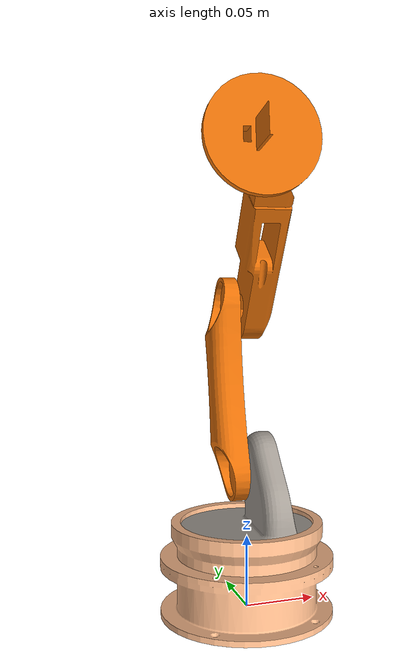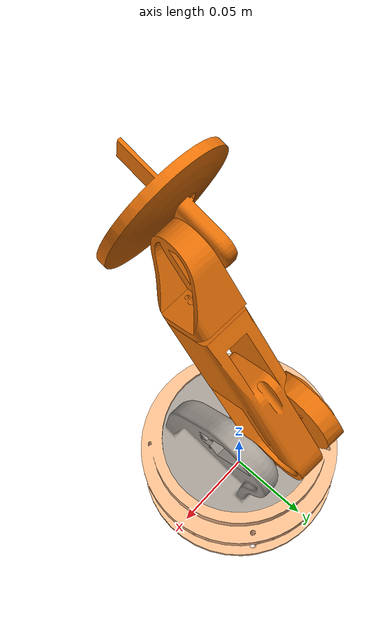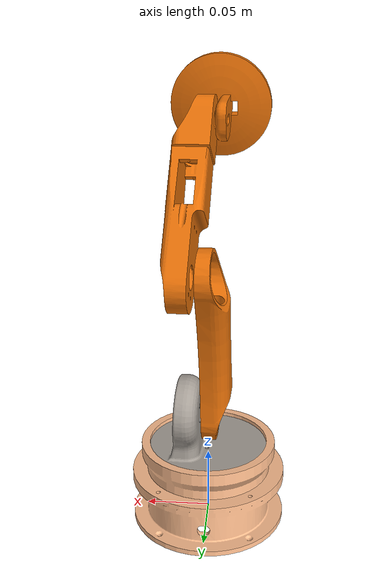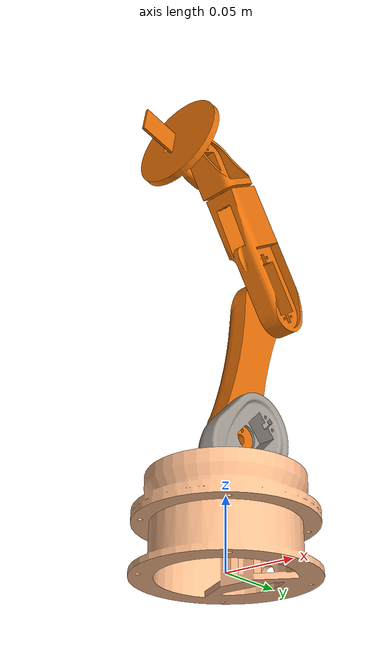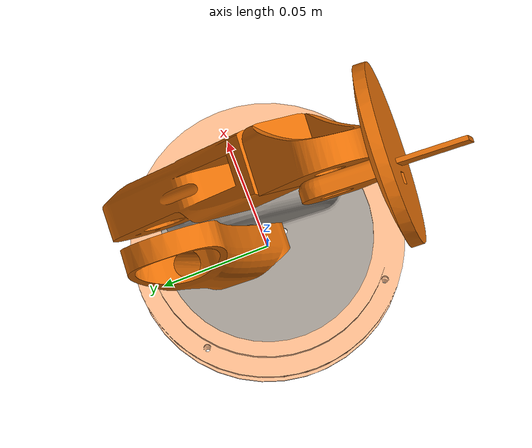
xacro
<?xml version="1.0"?>
<robot xmlns:xacro="http://www.ros.org/wiki/xacro" name="arm_robot_pkg">
    <xacro:arg name="initial_positions_file" default="initial_positions.yaml" />

    <!-- Import arm_robot_pkg urdf file -->
    <xacro:include filename="$(find pca9685_arm_robot)/urdf/arm_robot_ros2_control_block.urdf" />

    <!-- Import control_xacro -->
    <xacro:include filename="arm_robot_pkg.ros2_control.xacro" />

    <xacro:arm_robot_pkg_ros2_control name="FakeSystem" initial_positions_file="$(arg initial_positions_file)"/>

</robot>

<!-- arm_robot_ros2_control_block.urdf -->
<robot name="arm_robot_pkg">

  <link name="world"/>
    <joint name ="world_fixed_base" type="fixed">
      <parent link ="world"/>
      <child link="base_link"/>
      <origin xyz="0.0 0.0 0.0" rpy="0.0 0.0 0.0"/>
    </joint>

  <link
    name="base_link">
    <inertial>
      <origin
        xyz="-1.1366E-08 0.025967 -0.00013083"
        rpy="0 0 0" />
      <mass
        value="0.14496" />
      <inertia
        ixx="0.00014447"
        ixy="-5.6249E-12"
        ixz="2.6788E-11"
        iyy="0.00029241"
        iyz="-4.0046E-06"
        izz="0.00019087" />
    </inertial>
    <visual>
      <origin
        xyz="0 0 0"
        rpy="0 0 0" />
      <geometry>
        <mesh
          filename="package://pca9685_arm_robot/meshes/base_link.STL" />
      </geometry>
      <material
        name="">
        <color
          rgba="1 0.7451 0.56078 1" />
      </material>
    </visual>
    <collision>
      <origin
        xyz="0 0 0"
        rpy="0 0 0" />
      <geometry>
        <mesh
          filename="package://pca9685_arm_robot/meshes/base_link.STL" />
      </geometry>
    </collision>
  </link>
  <link
    name="rotating_base">
    <inertial>
      <origin
        xyz="0.0015209 0.019183 0.0072511"
        rpy="0 0 0" />
      <mass
        value="0.072452" />
      <inertia
        ixx="4.957E-05"
        ixy="-6.6445E-06"
        ixz="-3.5E-07"
        iyy="5.8905E-05"
        iyz="-6.2507E-06"
        izz="6.6555E-05" />
    </inertial>
    <visual>
      <origin
        xyz="0 0 0"
        rpy="0 0 0" />
      <geometry>
        <mesh
          filename="package://pca9685_arm_robot/meshes/rotating_base.STL" />
      </geometry>
      <material
        name="">
        <color
          rgba="0.64706 0.61961 0.58824 1" />
      </material>
    </visual>
    <collision>
      <origin
        xyz="0 0 0"
        rpy="0 0 0" />
      <geometry>
        <mesh
          filename="package://pca9685_arm_robot/meshes/rotating_base.STL" />
      </geometry>
    </collision>
  </link>
  <joint
    name="rotating_base_joint"
    type="revolute">
    <origin
      xyz="0 0 0.0534"
      rpy="1.5708 0 1.5083" />
    <parent
      link="base_link" />
    <child
      link="rotating_base" />
    <axis
      xyz="0 1 0" />
    <limit
      lower="-1.046"
      upper="1.046"
      effort="7"
      velocity="0" />
  </joint>
  <link
    name="shoulder_link">
    <inertial>
      <origin
        xyz="-3.278E-08 -0.0068604 0.06"
        rpy="0 0 0" />
      <mass
        value="0.064873" />
      <inertia
        ixx="0.00010616"
        ixy="-4.3906E-11"
        ixz="1.9531E-11"
        iyy="0.00011116"
        iyz="1.5994E-10"
        izz="9.4574E-06" />
    </inertial>
    <visual>
      <origin
        xyz="0 0 0"
        rpy="0 0 0" />
      <geometry>
        <mesh
          filename="package://pca9685_arm_robot/meshes/shoulder_link.STL" />
      </geometry>
      <material
        name="">
        <color
          rgba="0.9098 0.44314 0.031373 1" />
      </material>
    </visual>
    <collision>
      <origin
        xyz="0 0 0"
        rpy="0 0 0" />
      <geometry>
        <mesh
          filename="package://pca9685_arm_robot/meshes/shoulder_link.STL" />
      </geometry>
    </collision>
  </link>
  <joint
    name="shoulder_link_joint"
    type="revolute">
    <origin
      xyz="0.01391 0.04028 0"
      rpy="1.5708 0 2.9049" />
    <parent
      link="rotating_base" />
    <child
      link="shoulder_link" />
    <axis
      xyz="0 1 0" />
    <limit
      lower="-1.046"
      upper="1.046"
      effort="6"
      velocity="0" />
  </joint>
  <link
    name="Elbow_link">
    <inertial>
      <origin
        xyz="0.041368 -3.0653E-05 0.012522"
        rpy="0 0 0" />
      <mass
        value="0.048013" />
      <inertia
        ixx="9.0564E-06"
        ixy="6.9501E-08"
        ixz="9.4144E-08"
        iyy="5.2721E-05"
        iyz="1.6651E-10"
        izz="5.619E-05" />
    </inertial>
    <visual>
      <origin
        xyz="0 0 0"
        rpy="0 0 0" />
      <geometry>
        <mesh
          filename="package://pca9685_arm_robot/meshes/Elbow_link.STL" />
      </geometry>
      <material
        name="">
        <color
          rgba="0.9098 0.44314 0.031373 1" />
      </material>
    </visual>
    <collision>
      <origin
        xyz="0 0 0"
        rpy="0 0 0" />
      <geometry>
        <mesh
          filename="package://pca9685_arm_robot/meshes/Elbow_link.STL" />
      </geometry>
    </collision>
  </link>
  <joint
    name="Elbow_link_joint"
    type="revolute">
    <origin
      xyz="0 0 0.12"
      rpy="-1.5708 -0.72865 0" />
    <parent
      link="shoulder_link" />
    <child
      link="Elbow_link" />
    <axis
      xyz="0 0 1" />
    <limit
      lower="-1.046"
      upper="1.046"
      effort="6"
      velocity="0" />
  </joint>
  <link
    name="wrist_link">
    <inertial>
      <origin
        xyz="0.0050461 0.03312 -0.005357"
        rpy="0 0 0" />
      <mass
        value="0.016368" />
      <inertia
        ixx="3.878E-06"
        ixy="1.1629E-08"
        ixz="-4.0541E-09"
        iyy="2.567E-06"
        iyz="5.8334E-07"
        izz="4.971E-06" />
    </inertial>
    <visual>
      <origin
        xyz="0 0 0"
        rpy="0 0 0" />
      <geometry>
        <mesh
          filename="package://pca9685_arm_robot/meshes/wrist_link.STL" />
      </geometry>
      <material
        name="">
        <color
          rgba="0.9098 0.44314 0.031373 1" />
      </material>
    </visual>
    <collision>
      <origin
        xyz="0 0 0"
        rpy="0 0 0" />
      <geometry>
        <mesh
          filename="package://pca9685_arm_robot/meshes/wrist_link.STL" />
      </geometry>
    </collision>
  </link>
  <joint
    name="wrist_link_joint"
    type="revolute">
    <origin
      xyz="0.076247 0.0053 0.0125"
      rpy="0 -0.0023933 -1.5708" />
    <parent
      link="Elbow_link" />
    <child
      link="wrist_link" />
    <axis
      xyz="0 1 0" />
    <limit
      lower="-1.57"
      upper="1.57"
      effort="5"
      velocity="0" />
  </joint>
  <link
    name="gripper">
    <inertial>
      <origin
        xyz="-0.0159038540803953 0.00424072813829934 0.021244775964588"
        rpy="0 0 0" />
      <mass
        value="0.0404906779655548" />
      <inertia
        ixx="1.4848483571203E-05"
        ixy="-8.10262188577281E-08"
        ixz="-3.36945997006045E-07"
        iyy="1.44737929752106E-05"
        iyz="-4.58219387030767E-07"
        izz="2.24889997572499E-05" />
    </inertial>
    <visual>
      <origin
        xyz="0 0 0"
        rpy="0 0 0" />
      <geometry>
        <mesh
          filename="package://pca9685_arm_robot/meshes/gripper.STL" />
      </geometry>
      <material
        name="">
        <color
          rgba="0.909803921568627 0.443137254901961 0.0313725490196078 1" />
      </material>
    </visual>
    <collision>
      <origin
        xyz="0 0 0"
        rpy="0 0 0" />
      <geometry>
        <mesh
          filename="package://pca9685_arm_robot/meshes/gripper.STL" />
      </geometry>
    </collision>
  </link>
  <joint
    name="gripper_joint"
    type="revolute">
    <origin
      xyz="0.005 0.043353 0"
      rpy="-1.9228 -1.5708 1.1777" />
    <parent
      link="wrist_link" />
    <child
      link="gripper" />
    <axis
      xyz="1 0 0" />
    <limit
      lower="-1.57"
      upper="1.57"
      effort="5"
      velocity="0" />
  </joint>

  <ros2_control name="arm_robot_pkg" type="system">

    <hardware>
      <plugin>mock_components/GenericSystem</plugin>
      <!-- I²C bus 7 = Pin 3/5 on Jetson AGX Orin 40-pin header -->
      <param name="i2c_bus">7</param>
      <!-- PCA9685 default address (A0-A5 all unsoldered) -->
      <param name="i2c_address">0x40</param>
      <!-- Standard hobby servo PWM frequency -->
      <param name="pwm_frequency">50</param>
    </hardware>

    <joint name="rotating_base_joint">
      <param name="channel">2</param>
      <param name="min_pulse_us">280</param>    <!-- servo at -1.046 rad -->
      <param name="max_pulse_us">2540</param>   <!-- servo at +1.046 rad -->
      <param name="urdf_limit_rad">1.046</param><!-- must match URDF limit -->
      <param name="home_angle_deg">0</param>    <!-- 0 deg = 0 rad = neutral -->
      <command_interface name="position">
        <param name="min">-1.046</param>
        <param name="max"> 1.046</param>
      </command_interface>
      <state_interface name="position"/>
    </joint>

    <!-- ── shoulder_joint  (shoulder_link_joint  ±1.046 rad) ──────────
         Maps to PCA9685 channel 0.                                          -->
    <joint name="shoulder_link_joint">
      <param name="channel">0</param>
      <param name="min_pulse_us">1358</param>
      <param name="max_pulse_us">2058</param>
      <param name="urdf_limit_rad">1.046</param>
      <param name="home_angle_deg">0</param>
      <command_interface name="position">
        <param name="min">-1.046</param>
        <param name="max"> 1.046</param>
      </command_interface>
      <state_interface name="position"/>
    </joint>

    <!-- ── elbow_joint  (Elbow_link_joint  ±1.046 rad) ────────────────
         Maps to PCA9685 channel 1.                                          -->
    <joint name="Elbow_link_joint">
      <param name="channel">1</param>
      <param name="min_pulse_us">370</param>
      <param name="max_pulse_us">2630</param>
      <param name="urdf_limit_rad">1.046</param>
      <param name="home_angle_deg">0</param>
      <command_interface name="position">
        <param name="min">-1.046</param>
        <param name="max"> 1.046</param>
      </command_interface>
      <state_interface name="position"/>
    </joint>

    <!-- ── wrist_joint  (wrist_link_joint  ±1.57 rad) ─────────────────
         Maps to PCA9685 channel 3.                                          -->
    <joint name="wrist_link_joint">
      <param name="channel">3</param>
      <param name="min_pulse_us">530</param>
      <param name="max_pulse_us">2310</param>
      <param name="urdf_limit_rad">1.570</param>
      <param name="home_angle_deg">0</param>
      <command_interface name="position">
        <param name="min">-1.57</param>
        <param name="max"> 1.57</param>
      </command_interface>
      <state_interface name="position"/>
    </joint>

    <joint name="gripper_joint">
      <param name="channel">4</param>
      <param name="min_pulse_us">620</param>
      <param name="max_pulse_us">2760</param>
      <param name="urdf_limit_rad">1.570</param>
      <param name="home_angle_deg">0</param>
      <command_interface name="position">
        <param name="min">-1.57</param>
        <param name="max"> 1.57</param>
      </command_interface>
      <state_interface name="position"/>
    </joint>

  </ros2_control>

</robot>
